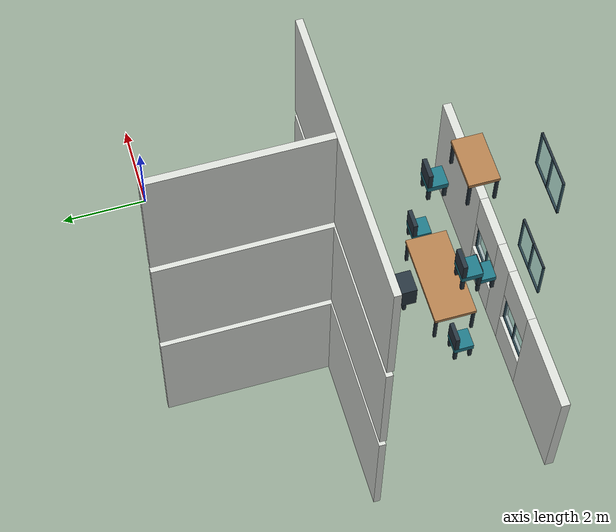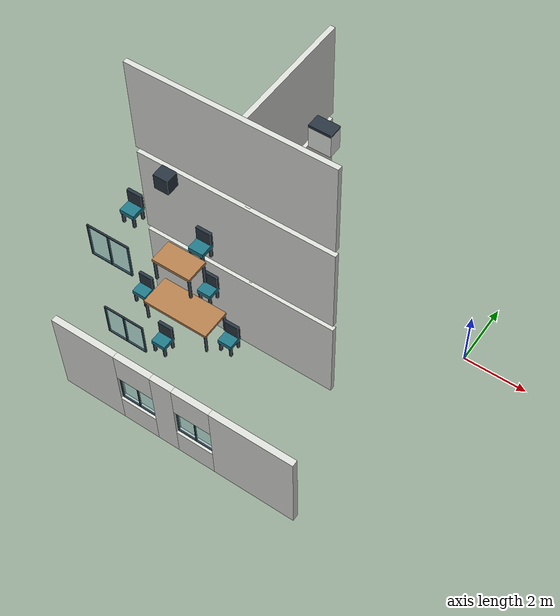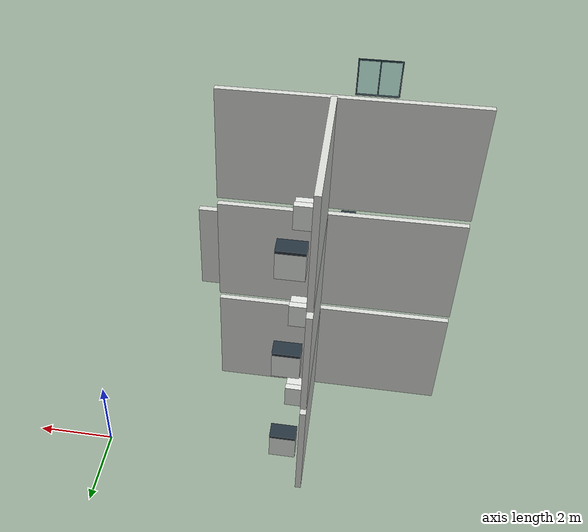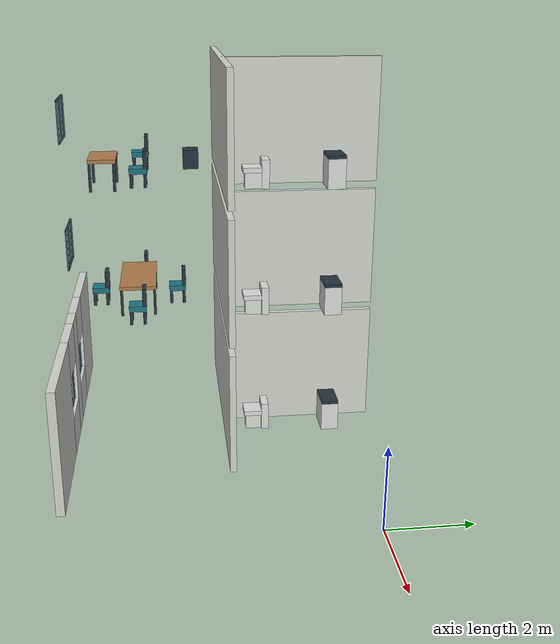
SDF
<sdf version="1.6">
 <world name="three_floor">
  <model name="f1_wall_004">
   <static>true</static>
   <pose>-5.1 -6.9 1.5 0 0 0</pose>
   <link name="f1_wall_004_link">
    <collision name="f1_wall_004_link_panel_0_collision">
     <pose>-2.85 0 0 0 0 0</pose>
     <geometry><box><size>2.1 0.2 3</size></box></geometry>
    </collision>
    <visual name="f1_wall_004_link_panel_0_visual">
     <pose>-2.85 0 0 0 0 0</pose>
     <geometry><box><size>2.1 0.2 3</size></box></geometry>
     <material><ambient>.84 .85 .83 1</ambient><diffuse>.84 .85 .83 1</diffuse></material>
    </visual>
    <collision name="f1_wall_004_link_sill_0_collision">
     <pose>-1.2 0 -1.025 0 0 0</pose>
     <geometry><box><size>1.2 0.2 0.95</size></box></geometry>
    </collision>
    <visual name="f1_wall_004_link_sill_0_visual">
     <pose>-1.2 0 -1.025 0 0 0</pose>
     <geometry><box><size>1.2 0.2 0.95</size></box></geometry>
     <material><ambient>.84 .85 .83 1</ambient><diffuse>.84 .85 .83 1</diffuse></material>
    </visual>
    <collision name="f1_wall_004_link_header_0_collision">
     <pose>-1.2 0 1 0 0 0</pose>
     <geometry><box><size>1.2 0.2 1</size></box></geometry>
    </collision>
    <visual name="f1_wall_004_link_header_0_visual">
     <pose>-1.2 0 1 0 0 0</pose>
     <geometry><box><size>1.2 0.2 1</size></box></geometry>
     <material><ambient>.84 .85 .83 1</ambient><diffuse>.84 .85 .83 1</diffuse></material>
    </visual>
    <collision name="f1_wall_004_link_panel_1_collision">
     <pose>-0.25 0 0 0 0 0</pose>
     <geometry><box><size>0.7 0.2 3</size></box></geometry>
    </collision>
    <visual name="f1_wall_004_link_panel_1_visual">
     <pose>-0.25 0 0 0 0 0</pose>
     <geometry><box><size>0.7 0.2 3</size></box></geometry>
     <material><ambient>.84 .85 .83 1</ambient><diffuse>.84 .85 .83 1</diffuse></material>
    </visual>
    <collision name="f1_wall_004_link_sill_1_collision">
     <pose>0.7 0 -1.025 0 0 0</pose>
     <geometry><box><size>1.2 0.2 0.95</size></box></geometry>
    </collision>
    <visual name="f1_wall_004_link_sill_1_visual">
     <pose>0.7 0 -1.025 0 0 0</pose>
     <geometry><box><size>1.2 0.2 0.95</size></box></geometry>
     <material><ambient>.84 .85 .83 1</ambient><diffuse>.84 .85 .83 1</diffuse></material>
    </visual>
    <collision name="f1_wall_004_link_header_1_collision">
     <pose>0.7 0 1 0 0 0</pose>
     <geometry><box><size>1.2 0.2 1</size></box></geometry>
    </collision>
    <visual name="f1_wall_004_link_header_1_visual">
     <pose>0.7 0 1 0 0 0</pose>
     <geometry><box><size>1.2 0.2 1</size></box></geometry>
     <material><ambient>.84 .85 .83 1</ambient><diffuse>.84 .85 .83 1</diffuse></material>
    </visual>
    <collision name="f1_wall_004_link_last_panel_collision">
     <pose>2.6 0 0 0 0 0</pose>
     <geometry><box><size>2.6 0.2 3</size></box></geometry>
    </collision>
    <visual name="f1_wall_004_link_last_panel_visual">
     <pose>2.6 0 0 0 0 0</pose>
     <geometry><box><size>2.6 0.2 3</size></box></geometry>
     <material><ambient>.84 .85 .83 1</ambient><diffuse>.84 .85 .83 1</diffuse></material>
    </visual>
   </link>
  </model>
  <model name="f1_wall_018">
   <static>true</static>
   <pose>-5.7 -3 1.5 0 0 0</pose>
   <link name="f1_wall_018_link">
    <collision name="f1_wall_018_collision"><geometry><box><size>6.2 0.15 3</size></box></geometry></collision>
    <visual name="f1_wall_018_visual">
     <geometry><box><size>6.2 0.15 3</size></box></geometry>
     <material><ambient>.84 .85 .83 1</ambient><diffuse>.84 .85 .83 1</diffuse></material>
    </visual>
   </link>
  </model>
  <model name="f1_wall_020">
   <static>true</static>
   <pose>-5.3 -1.1 1.5 0 0 0</pose>
   <link name="f1_wall_020_link">
    <collision name="f1_wall_020_collision"><geometry><box><size>0.15 3.8 3</size></box></geometry></collision>
    <visual name="f1_wall_020_visual">
     <geometry><box><size>0.15 3.8 3</size></box></geometry>
     <material><ambient>.84 .85 .83 1</ambient><diffuse>.84 .85 .83 1</diffuse></material>
    </visual>
   </link>
  </model>
  <model name="f2_wall_018">
   <static>true</static>
   <pose>-5.7 -3 4.7 0 0 0</pose>
   <link name="f2_wall_018_link">
    <collision name="f2_wall_018_collision"><geometry><box><size>6.2 0.15 3</size></box></geometry></collision>
    <visual name="f2_wall_018_visual">
     <geometry><box><size>6.2 0.15 3</size></box></geometry>
     <material><ambient>.84 .85 .83 1</ambient><diffuse>.84 .85 .83 1</diffuse></material>
    </visual>
   </link>
  </model>
  <model name="f2_wall_020">
   <static>true</static>
   <pose>-5.3 -1.1 4.7 0 0 0</pose>
   <link name="f2_wall_020_link">
    <collision name="f2_wall_020_collision"><geometry><box><size>0.15 3.8 3</size></box></geometry></collision>
    <visual name="f2_wall_020_visual">
     <geometry><box><size>0.15 3.8 3</size></box></geometry>
     <material><ambient>.84 .85 .83 1</ambient><diffuse>.84 .85 .83 1</diffuse></material>
    </visual>
   </link>
  </model>
  <model name="f3_wall_018">
   <static>true</static>
   <pose>-5.7 -3 7.9 0 0 0</pose>
   <link name="f3_wall_018_link">
    <collision name="f3_wall_018_collision"><geometry><box><size>6.2 0.15 3</size></box></geometry></collision>
    <visual name="f3_wall_018_visual">
     <geometry><box><size>6.2 0.15 3</size></box></geometry>
     <material><ambient>.84 .85 .83 1</ambient><diffuse>.84 .85 .83 1</diffuse></material>
    </visual>
   </link>
  </model>
  <model name="f3_wall_020">
   <static>true</static>
   <pose>-5.3 -1.1 7.9 0 0 0</pose>
   <link name="f3_wall_020_link">
    <collision name="f3_wall_020_collision"><geometry><box><size>0.15 3.8 3</size></box></geometry></collision>
    <visual name="f3_wall_020_visual">
     <geometry><box><size>0.15 3.8 3</size></box></geometry>
     <material><ambient>.84 .85 .83 1</ambient><diffuse>.84 .85 .83 1</diffuse></material>
    </visual>
   </link>
  </model>
  <model name="f1_s2_window_08">
   <static>true</static>
   <pose>-6.3 -6.9 1.475 0 0 0</pose>
   <link name="f1_s2_window_08_link">
    <collision name="f1_s2_window_08_link_glass_collision">
     <geometry><box><size>1.2 0.045 1.05</size></box></geometry>
    </collision>
    <visual name="f1_s2_window_08_link_glass_visual">
     <geometry><box><size>1.2 0.045 1.05</size></box></geometry>
     <material><ambient>0.44 0.76 0.83 1</ambient><diffuse>0.44 0.76 0.83 1</diffuse></material>
     <transparency>0.65</transparency>
    </visual>
    <collision name="f1_s2_window_08_link_mullion_-0.58_collision">
     <pose>-0.58 0 0 0 0 0</pose>
     <geometry><box><size>0.035 0.045 1.05</size></box></geometry>
    </collision>
    <visual name="f1_s2_window_08_link_mullion_-0.58_visual">
     <pose>-0.58 0 0 0 0 0</pose>
     <geometry><box><size>0.035 0.045 1.05</size></box></geometry>
     <material><ambient>0.15 0.2 0.24 1</ambient><diffuse>0.15 0.2 0.24 1</diffuse></material>
    </visual>
    <collision name="f1_s2_window_08_link_mullion_0.58_collision">
     <pose>0.58 0 0 0 0 0</pose>
     <geometry><box><size>0.035 0.045 1.05</size></box></geometry>
    </collision>
    <visual name="f1_s2_window_08_link_mullion_0.58_visual">
     <pose>0.58 0 0 0 0 0</pose>
     <geometry><box><size>0.035 0.045 1.05</size></box></geometry>
     <material><ambient>0.15 0.2 0.24 1</ambient><diffuse>0.15 0.2 0.24 1</diffuse></material>
    </visual>
    <collision name="f1_s2_window_08_link_mullion_0_collision">
     <geometry><box><size>0.035 0.045 1.05</size></box></geometry>
    </collision>
    <visual name="f1_s2_window_08_link_mullion_0_visual">
     <geometry><box><size>0.035 0.045 1.05</size></box></geometry>
     <material><ambient>0.15 0.2 0.24 1</ambient><diffuse>0.15 0.2 0.24 1</diffuse></material>
    </visual>
    <collision name="f1_s2_window_08_link_frame_-0.51_collision">
     <pose>0 0 -0.51 0 0 0</pose>
     <geometry><box><size>1.2 0.045 0.03</size></box></geometry>
    </collision>
    <visual name="f1_s2_window_08_link_frame_-0.51_visual">
     <pose>0 0 -0.51 0 0 0</pose>
     <geometry><box><size>1.2 0.045 0.03</size></box></geometry>
     <material><ambient>0.15 0.2 0.24 1</ambient><diffuse>0.15 0.2 0.24 1</diffuse></material>
    </visual>
    <collision name="f1_s2_window_08_link_frame_0.51_collision">
     <pose>0 0 0.51 0 0 0</pose>
     <geometry><box><size>1.2 0.045 0.03</size></box></geometry>
    </collision>
    <visual name="f1_s2_window_08_link_frame_0.51_visual">
     <pose>0 0 0.51 0 0 0</pose>
     <geometry><box><size>1.2 0.045 0.03</size></box></geometry>
     <material><ambient>0.15 0.2 0.24 1</ambient><diffuse>0.15 0.2 0.24 1</diffuse></material>
    </visual>
   </link>
  </model>
  <model name="f1_s2_window_09">
   <static>true</static>
   <pose>-4.4 -6.9 1.475 0 0 0</pose>
   <link name="f1_s2_window_09_link">
    <collision name="f1_s2_window_09_link_glass_collision">
     <geometry><box><size>1.2 0.045 1.05</size></box></geometry>
    </collision>
    <visual name="f1_s2_window_09_link_glass_visual">
     <geometry><box><size>1.2 0.045 1.05</size></box></geometry>
     <material><ambient>0.44 0.76 0.83 1</ambient><diffuse>0.44 0.76 0.83 1</diffuse></material>
     <transparency>0.65</transparency>
    </visual>
    <collision name="f1_s2_window_09_link_mullion_-0.58_collision">
     <pose>-0.58 0 0 0 0 0</pose>
     <geometry><box><size>0.035 0.045 1.05</size></box></geometry>
    </collision>
    <visual name="f1_s2_window_09_link_mullion_-0.58_visual">
     <pose>-0.58 0 0 0 0 0</pose>
     <geometry><box><size>0.035 0.045 1.05</size></box></geometry>
     <material><ambient>0.15 0.2 0.24 1</ambient><diffuse>0.15 0.2 0.24 1</diffuse></material>
    </visual>
    <collision name="f1_s2_window_09_link_mullion_0.58_collision">
     <pose>0.58 0 0 0 0 0</pose>
     <geometry><box><size>0.035 0.045 1.05</size></box></geometry>
    </collision>
    <visual name="f1_s2_window_09_link_mullion_0.58_visual">
     <pose>0.58 0 0 0 0 0</pose>
     <geometry><box><size>0.035 0.045 1.05</size></box></geometry>
     <material><ambient>0.15 0.2 0.24 1</ambient><diffuse>0.15 0.2 0.24 1</diffuse></material>
    </visual>
    <collision name="f1_s2_window_09_link_mullion_0_collision">
     <geometry><box><size>0.035 0.045 1.05</size></box></geometry>
    </collision>
    <visual name="f1_s2_window_09_link_mullion_0_visual">
     <geometry><box><size>0.035 0.045 1.05</size></box></geometry>
     <material><ambient>0.15 0.2 0.24 1</ambient><diffuse>0.15 0.2 0.24 1</diffuse></material>
    </visual>
    <collision name="f1_s2_window_09_link_frame_-0.51_collision">
     <pose>0 0 -0.51 0 0 0</pose>
     <geometry><box><size>1.2 0.045 0.03</size></box></geometry>
    </collision>
    <visual name="f1_s2_window_09_link_frame_-0.51_visual">
     <pose>0 0 -0.51 0 0 0</pose>
     <geometry><box><size>1.2 0.045 0.03</size></box></geometry>
     <material><ambient>0.15 0.2 0.24 1</ambient><diffuse>0.15 0.2 0.24 1</diffuse></material>
    </visual>
    <collision name="f1_s2_window_09_link_frame_0.51_collision">
     <pose>0 0 0.51 0 0 0</pose>
     <geometry><box><size>1.2 0.045 0.03</size></box></geometry>
    </collision>
    <visual name="f1_s2_window_09_link_frame_0.51_visual">
     <pose>0 0 0.51 0 0 0</pose>
     <geometry><box><size>1.2 0.045 0.03</size></box></geometry>
     <material><ambient>0.15 0.2 0.24 1</ambient><diffuse>0.15 0.2 0.24 1</diffuse></material>
    </visual>
   </link>
  </model>
  <model name="f2_s2_window_19">
   <static>true</static>
   <pose>-6.3 -6.9 4.675 0 0 0</pose>
   <link name="f2_s2_window_19_link">
    <collision name="f2_s2_window_19_link_glass_collision">
     <geometry><box><size>1.2 0.045 1.05</size></box></geometry>
    </collision>
    <visual name="f2_s2_window_19_link_glass_visual">
     <geometry><box><size>1.2 0.045 1.05</size></box></geometry>
     <material><ambient>0.44 0.76 0.83 1</ambient><diffuse>0.44 0.76 0.83 1</diffuse></material>
     <transparency>0.65</transparency>
    </visual>
    <collision name="f2_s2_window_19_link_mullion_-0.58_collision">
     <pose>-0.58 0 0 0 0 0</pose>
     <geometry><box><size>0.035 0.045 1.05</size></box></geometry>
    </collision>
    <visual name="f2_s2_window_19_link_mullion_-0.58_visual">
     <pose>-0.58 0 0 0 0 0</pose>
     <geometry><box><size>0.035 0.045 1.05</size></box></geometry>
     <material><ambient>0.15 0.2 0.24 1</ambient><diffuse>0.15 0.2 0.24 1</diffuse></material>
    </visual>
    <collision name="f2_s2_window_19_link_mullion_0.58_collision">
     <pose>0.58 0 0 0 0 0</pose>
     <geometry><box><size>0.035 0.045 1.05</size></box></geometry>
    </collision>
    <visual name="f2_s2_window_19_link_mullion_0.58_visual">
     <pose>0.58 0 0 0 0 0</pose>
     <geometry><box><size>0.035 0.045 1.05</size></box></geometry>
     <material><ambient>0.15 0.2 0.24 1</ambient><diffuse>0.15 0.2 0.24 1</diffuse></material>
    </visual>
    <collision name="f2_s2_window_19_link_mullion_0_collision">
     <geometry><box><size>0.035 0.045 1.05</size></box></geometry>
    </collision>
    <visual name="f2_s2_window_19_link_mullion_0_visual">
     <geometry><box><size>0.035 0.045 1.05</size></box></geometry>
     <material><ambient>0.15 0.2 0.24 1</ambient><diffuse>0.15 0.2 0.24 1</diffuse></material>
    </visual>
    <collision name="f2_s2_window_19_link_frame_-0.51_collision">
     <pose>0 0 -0.51 0 0 0</pose>
     <geometry><box><size>1.2 0.045 0.03</size></box></geometry>
    </collision>
    <visual name="f2_s2_window_19_link_frame_-0.51_visual">
     <pose>0 0 -0.51 0 0 0</pose>
     <geometry><box><size>1.2 0.045 0.03</size></box></geometry>
     <material><ambient>0.15 0.2 0.24 1</ambient><diffuse>0.15 0.2 0.24 1</diffuse></material>
    </visual>
    <collision name="f2_s2_window_19_link_frame_0.51_collision">
     <pose>0 0 0.51 0 0 0</pose>
     <geometry><box><size>1.2 0.045 0.03</size></box></geometry>
    </collision>
    <visual name="f2_s2_window_19_link_frame_0.51_visual">
     <pose>0 0 0.51 0 0 0</pose>
     <geometry><box><size>1.2 0.045 0.03</size></box></geometry>
     <material><ambient>0.15 0.2 0.24 1</ambient><diffuse>0.15 0.2 0.24 1</diffuse></material>
    </visual>
   </link>
  </model>
  <model name="f3_s2_window_31">
   <static>true</static>
   <pose>-6.3 -6.9 7.875 0 0 0</pose>
   <link name="f3_s2_window_31_link">
    <collision name="f3_s2_window_31_link_glass_collision">
     <geometry><box><size>1.2 0.045 1.05</size></box></geometry>
    </collision>
    <visual name="f3_s2_window_31_link_glass_visual">
     <geometry><box><size>1.2 0.045 1.05</size></box></geometry>
     <material><ambient>0.44 0.76 0.83 1</ambient><diffuse>0.44 0.76 0.83 1</diffuse></material>
     <transparency>0.65</transparency>
    </visual>
    <collision name="f3_s2_window_31_link_mullion_-0.58_collision">
     <pose>-0.58 0 0 0 0 0</pose>
     <geometry><box><size>0.035 0.045 1.05</size></box></geometry>
    </collision>
    <visual name="f3_s2_window_31_link_mullion_-0.58_visual">
     <pose>-0.58 0 0 0 0 0</pose>
     <geometry><box><size>0.035 0.045 1.05</size></box></geometry>
     <material><ambient>0.15 0.2 0.24 1</ambient><diffuse>0.15 0.2 0.24 1</diffuse></material>
    </visual>
    <collision name="f3_s2_window_31_link_mullion_0.58_collision">
     <pose>0.58 0 0 0 0 0</pose>
     <geometry><box><size>0.035 0.045 1.05</size></box></geometry>
    </collision>
    <visual name="f3_s2_window_31_link_mullion_0.58_visual">
     <pose>0.58 0 0 0 0 0</pose>
     <geometry><box><size>0.035 0.045 1.05</size></box></geometry>
     <material><ambient>0.15 0.2 0.24 1</ambient><diffuse>0.15 0.2 0.24 1</diffuse></material>
    </visual>
    <collision name="f3_s2_window_31_link_mullion_0_collision">
     <geometry><box><size>0.035 0.045 1.05</size></box></geometry>
    </collision>
    <visual name="f3_s2_window_31_link_mullion_0_visual">
     <geometry><box><size>0.035 0.045 1.05</size></box></geometry>
     <material><ambient>0.15 0.2 0.24 1</ambient><diffuse>0.15 0.2 0.24 1</diffuse></material>
    </visual>
    <collision name="f3_s2_window_31_link_frame_-0.51_collision">
     <pose>0 0 -0.51 0 0 0</pose>
     <geometry><box><size>1.2 0.045 0.03</size></box></geometry>
    </collision>
    <visual name="f3_s2_window_31_link_frame_-0.51_visual">
     <pose>0 0 -0.51 0 0 0</pose>
     <geometry><box><size>1.2 0.045 0.03</size></box></geometry>
     <material><ambient>0.15 0.2 0.24 1</ambient><diffuse>0.15 0.2 0.24 1</diffuse></material>
    </visual>
    <collision name="f3_s2_window_31_link_frame_0.51_collision">
     <pose>0 0 0.51 0 0 0</pose>
     <geometry><box><size>1.2 0.045 0.03</size></box></geometry>
    </collision>
    <visual name="f3_s2_window_31_link_frame_0.51_visual">
     <pose>0 0 0.51 0 0 0</pose>
     <geometry><box><size>1.2 0.045 0.03</size></box></geometry>
     <material><ambient>0.15 0.2 0.24 1</ambient><diffuse>0.15 0.2 0.24 1</diffuse></material>
    </visual>
   </link>
  </model>
  <model name="f1_s2_furniture_08_toilet">
   <static>true</static>
   <pose>-4.85 -2.25 0 0 0 0</pose>
   <link name="f1_s2_furniture_08_toilet_link">
    <collision name="f1_s2_furniture_08_toilet_link_base_collision">
     <pose>0 0 0.22 0 0 0</pose>
     <geometry><box><size>0.375 0.52 0.44</size></box></geometry>
    </collision>
    <visual name="f1_s2_furniture_08_toilet_link_base_visual">
     <pose>0 0 0.22 0 0 0</pose>
     <geometry><box><size>0.375 0.52 0.44</size></box></geometry>
     <material><ambient>0.88 0.89 0.88 1</ambient><diffuse>0.88 0.89 0.88 1</diffuse></material>
    </visual>
    <collision name="f1_s2_furniture_08_toilet_link_bowl_collision">
     <pose>0 -0.08 0.45 0 0 0</pose>
     <geometry><box><size>0.5 0.455 0.12</size></box></geometry>
    </collision>
    <visual name="f1_s2_furniture_08_toilet_link_bowl_visual">
     <pose>0 -0.08 0.45 0 0 0</pose>
     <geometry><box><size>0.5 0.455 0.12</size></box></geometry>
     <material><ambient>0.88 0.89 0.88 1</ambient><diffuse>0.88 0.89 0.88 1</diffuse></material>
    </visual>
    <collision name="f1_s2_furniture_08_toilet_link_cistern_collision">
     <pose>0 0.2275 0.35 0 0 0</pose>
     <geometry><box><size>0.5 0.18 0.7</size></box></geometry>
    </collision>
    <visual name="f1_s2_furniture_08_toilet_link_cistern_visual">
     <pose>0 0.2275 0.35 0 0 0</pose>
     <geometry><box><size>0.5 0.18 0.7</size></box></geometry>
     <material><ambient>0.88 0.89 0.88 1</ambient><diffuse>0.88 0.89 0.88 1</diffuse></material>
    </visual>
   </link>
  </model>
  <model name="f1_s2_furniture_09_basin">
   <static>true</static>
   <pose>-4.75 -0.35 0 0 0 0</pose>
   <link name="f1_s2_furniture_09_basin_link">
    <collision name="f1_s2_furniture_09_basin_link_cabinet_collision">
     <pose>0 0 0.36 0 0 0</pose>
     <geometry><box><size>0.7 0.43 0.72</size></box></geometry>
    </collision>
    <visual name="f1_s2_furniture_09_basin_link_cabinet_visual">
     <pose>0 0 0.36 0 0 0</pose>
     <geometry><box><size>0.7 0.43 0.72</size></box></geometry>
     <material><ambient>0.88 0.89 0.88 1</ambient><diffuse>0.88 0.89 0.88 1</diffuse></material>
    </visual>
    <collision name="f1_s2_furniture_09_basin_link_sink_collision">
     <pose>0 0 0.76 0 0 0</pose>
     <geometry><box><size>0.7 0.43 0.08</size></box></geometry>
    </collision>
    <visual name="f1_s2_furniture_09_basin_link_sink_visual">
     <pose>0 0 0.76 0 0 0</pose>
     <geometry><box><size>0.7 0.43 0.08</size></box></geometry>
     <material><ambient>0.15 0.2 0.24 1</ambient><diffuse>0.15 0.2 0.24 1</diffuse></material>
    </visual>
   </link>
  </model>
  <model name="f2_s2_furniture_27_table">
   <static>true</static>
   <pose>-5.85 -5.15 3.2 0 0 0</pose>
   <link name="f2_s2_furniture_27_table_link">
    <collision name="f2_s2_furniture_27_table_link_top_collision">
     <pose>0 0 0.715 0 0 0</pose>
     <geometry><box><size>2 0.9 0.09</size></box></geometry>
    </collision>
    <visual name="f2_s2_furniture_27_table_link_top_visual">
     <pose>0 0 0.715 0 0 0</pose>
     <geometry><box><size>2 0.9 0.09</size></box></geometry>
     <material><ambient>0.69 0.49 0.3 1</ambient><diffuse>0.69 0.49 0.3 1</diffuse></material>
    </visual>
    <collision name="f2_s2_furniture_27_table_link_leg_-0.955_-0.405_collision">
     <pose>-0.955 -0.405 0.335 0 0 0</pose>
     <geometry><box><size>0.06 0.06 0.67</size></box></geometry>
    </collision>
    <visual name="f2_s2_furniture_27_table_link_leg_-0.955_-0.405_visual">
     <pose>-0.955 -0.405 0.335 0 0 0</pose>
     <geometry><box><size>0.06 0.06 0.67</size></box></geometry>
     <material><ambient>0.15 0.2 0.24 1</ambient><diffuse>0.15 0.2 0.24 1</diffuse></material>
    </visual>
    <collision name="f2_s2_furniture_27_table_link_leg_-0.955_0.405_collision">
     <pose>-0.955 0.405 0.335 0 0 0</pose>
     <geometry><box><size>0.06 0.06 0.67</size></box></geometry>
    </collision>
    <visual name="f2_s2_furniture_27_table_link_leg_-0.955_0.405_visual">
     <pose>-0.955 0.405 0.335 0 0 0</pose>
     <geometry><box><size>0.06 0.06 0.67</size></box></geometry>
     <material><ambient>0.15 0.2 0.24 1</ambient><diffuse>0.15 0.2 0.24 1</diffuse></material>
    </visual>
    <collision name="f2_s2_furniture_27_table_link_leg_0.955_-0.405_collision">
     <pose>0.955 -0.405 0.335 0 0 0</pose>
     <geometry><box><size>0.06 0.06 0.67</size></box></geometry>
    </collision>
    <visual name="f2_s2_furniture_27_table_link_leg_0.955_-0.405_visual">
     <pose>0.955 -0.405 0.335 0 0 0</pose>
     <geometry><box><size>0.06 0.06 0.67</size></box></geometry>
     <material><ambient>0.15 0.2 0.24 1</ambient><diffuse>0.15 0.2 0.24 1</diffuse></material>
    </visual>
    <collision name="f2_s2_furniture_27_table_link_leg_0.955_0.405_collision">
     <pose>0.955 0.405 0.335 0 0 0</pose>
     <geometry><box><size>0.06 0.06 0.67</size></box></geometry>
    </collision>
    <visual name="f2_s2_furniture_27_table_link_leg_0.955_0.405_visual">
     <pose>0.955 0.405 0.335 0 0 0</pose>
     <geometry><box><size>0.06 0.06 0.67</size></box></geometry>
     <material><ambient>0.15 0.2 0.24 1</ambient><diffuse>0.15 0.2 0.24 1</diffuse></material>
    </visual>
   </link>
  </model>
  <model name="f2_s2_furniture_28_seat">
   <static>true</static>
   <pose>-7.25 -5.15 3.2 0 0 0</pose>
   <link name="f2_s2_furniture_28_seat_link">
    <collision name="f2_s2_furniture_28_seat_link_seat_collision">
     <pose>0 0 0.4 0 0 0</pose>
     <geometry><box><size>0.42 0.42 0.14</size></box></geometry>
    </collision>
    <visual name="f2_s2_furniture_28_seat_link_seat_visual">
     <pose>0 0 0.4 0 0 0</pose>
     <geometry><box><size>0.42 0.42 0.14</size></box></geometry>
     <material><ambient>0.12 0.46 0.52 1</ambient><diffuse>0.12 0.46 0.52 1</diffuse></material>
    </visual>
    <collision name="f2_s2_furniture_28_seat_link_back_collision">
     <pose>0 0.165 0.68 0 0 0</pose>
     <geometry><box><size>0.42 0.09 0.42</size></box></geometry>
    </collision>
    <visual name="f2_s2_furniture_28_seat_link_back_visual">
     <pose>0 0.165 0.68 0 0 0</pose>
     <geometry><box><size>0.42 0.09 0.42</size></box></geometry>
     <material><ambient>0.15 0.2 0.24 1</ambient><diffuse>0.15 0.2 0.24 1</diffuse></material>
    </visual>
    <collision name="f2_s2_furniture_28_seat_link_leg_-0.15999999999999998_-0.15999999999999998_collision">
     <pose>-0.16 -0.16 0.165 0 0 0</pose>
     <geometry><box><size>0.07 0.07 0.33</size></box></geometry>
    </collision>
    <visual name="f2_s2_furniture_28_seat_link_leg_-0.15999999999999998_-0.15999999999999998_visual">
     <pose>-0.16 -0.16 0.165 0 0 0</pose>
     <geometry><box><size>0.07 0.07 0.33</size></box></geometry>
     <material><ambient>0.15 0.2 0.24 1</ambient><diffuse>0.15 0.2 0.24 1</diffuse></material>
    </visual>
    <collision name="f2_s2_furniture_28_seat_link_leg_-0.15999999999999998_0.15999999999999998_collision">
     <pose>-0.16 0.16 0.165 0 0 0</pose>
     <geometry><box><size>0.07 0.07 0.33</size></box></geometry>
    </collision>
    <visual name="f2_s2_furniture_28_seat_link_leg_-0.15999999999999998_0.15999999999999998_visual">
     <pose>-0.16 0.16 0.165 0 0 0</pose>
     <geometry><box><size>0.07 0.07 0.33</size></box></geometry>
     <material><ambient>0.15 0.2 0.24 1</ambient><diffuse>0.15 0.2 0.24 1</diffuse></material>
    </visual>
    <collision name="f2_s2_furniture_28_seat_link_leg_0.15999999999999998_-0.15999999999999998_collision">
     <pose>0.16 -0.16 0.165 0 0 0</pose>
     <geometry><box><size>0.07 0.07 0.33</size></box></geometry>
    </collision>
    <visual name="f2_s2_furniture_28_seat_link_leg_0.15999999999999998_-0.15999999999999998_visual">
     <pose>0.16 -0.16 0.165 0 0 0</pose>
     <geometry><box><size>0.07 0.07 0.33</size></box></geometry>
     <material><ambient>0.15 0.2 0.24 1</ambient><diffuse>0.15 0.2 0.24 1</diffuse></material>
    </visual>
    <collision name="f2_s2_furniture_28_seat_link_leg_0.15999999999999998_0.15999999999999998_collision">
     <pose>0.16 0.16 0.165 0 0 0</pose>
     <geometry><box><size>0.07 0.07 0.33</size></box></geometry>
    </collision>
    <visual name="f2_s2_furniture_28_seat_link_leg_0.15999999999999998_0.15999999999999998_visual">
     <pose>0.16 0.16 0.165 0 0 0</pose>
     <geometry><box><size>0.07 0.07 0.33</size></box></geometry>
     <material><ambient>0.15 0.2 0.24 1</ambient><diffuse>0.15 0.2 0.24 1</diffuse></material>
    </visual>
   </link>
  </model>
  <model name="f2_s2_furniture_29_seat">
   <static>true</static>
   <pose>-4.45 -5.15 3.2 0 0 0</pose>
   <link name="f2_s2_furniture_29_seat_link">
    <collision name="f2_s2_furniture_29_seat_link_seat_collision">
     <pose>0 0 0.4 0 0 0</pose>
     <geometry><box><size>0.42 0.42 0.14</size></box></geometry>
    </collision>
    <visual name="f2_s2_furniture_29_seat_link_seat_visual">
     <pose>0 0 0.4 0 0 0</pose>
     <geometry><box><size>0.42 0.42 0.14</size></box></geometry>
     <material><ambient>0.12 0.46 0.52 1</ambient><diffuse>0.12 0.46 0.52 1</diffuse></material>
    </visual>
    <collision name="f2_s2_furniture_29_seat_link_back_collision">
     <pose>0 0.165 0.68 0 0 0</pose>
     <geometry><box><size>0.42 0.09 0.42</size></box></geometry>
    </collision>
    <visual name="f2_s2_furniture_29_seat_link_back_visual">
     <pose>0 0.165 0.68 0 0 0</pose>
     <geometry><box><size>0.42 0.09 0.42</size></box></geometry>
     <material><ambient>0.15 0.2 0.24 1</ambient><diffuse>0.15 0.2 0.24 1</diffuse></material>
    </visual>
    <collision name="f2_s2_furniture_29_seat_link_leg_-0.15999999999999998_-0.15999999999999998_collision">
     <pose>-0.16 -0.16 0.165 0 0 0</pose>
     <geometry><box><size>0.07 0.07 0.33</size></box></geometry>
    </collision>
    <visual name="f2_s2_furniture_29_seat_link_leg_-0.15999999999999998_-0.15999999999999998_visual">
     <pose>-0.16 -0.16 0.165 0 0 0</pose>
     <geometry><box><size>0.07 0.07 0.33</size></box></geometry>
     <material><ambient>0.15 0.2 0.24 1</ambient><diffuse>0.15 0.2 0.24 1</diffuse></material>
    </visual>
    <collision name="f2_s2_furniture_29_seat_link_leg_-0.15999999999999998_0.15999999999999998_collision">
     <pose>-0.16 0.16 0.165 0 0 0</pose>
     <geometry><box><size>0.07 0.07 0.33</size></box></geometry>
    </collision>
    <visual name="f2_s2_furniture_29_seat_link_leg_-0.15999999999999998_0.15999999999999998_visual">
     <pose>-0.16 0.16 0.165 0 0 0</pose>
     <geometry><box><size>0.07 0.07 0.33</size></box></geometry>
     <material><ambient>0.15 0.2 0.24 1</ambient><diffuse>0.15 0.2 0.24 1</diffuse></material>
    </visual>
    <collision name="f2_s2_furniture_29_seat_link_leg_0.15999999999999998_-0.15999999999999998_collision">
     <pose>0.16 -0.16 0.165 0 0 0</pose>
     <geometry><box><size>0.07 0.07 0.33</size></box></geometry>
    </collision>
    <visual name="f2_s2_furniture_29_seat_link_leg_0.15999999999999998_-0.15999999999999998_visual">
     <pose>0.16 -0.16 0.165 0 0 0</pose>
     <geometry><box><size>0.07 0.07 0.33</size></box></geometry>
     <material><ambient>0.15 0.2 0.24 1</ambient><diffuse>0.15 0.2 0.24 1</diffuse></material>
    </visual>
    <collision name="f2_s2_furniture_29_seat_link_leg_0.15999999999999998_0.15999999999999998_collision">
     <pose>0.16 0.16 0.165 0 0 0</pose>
     <geometry><box><size>0.07 0.07 0.33</size></box></geometry>
    </collision>
    <visual name="f2_s2_furniture_29_seat_link_leg_0.15999999999999998_0.15999999999999998_visual">
     <pose>0.16 0.16 0.165 0 0 0</pose>
     <geometry><box><size>0.07 0.07 0.33</size></box></geometry>
     <material><ambient>0.15 0.2 0.24 1</ambient><diffuse>0.15 0.2 0.24 1</diffuse></material>
    </visual>
   </link>
  </model>
  <model name="f2_s2_furniture_30_seat">
   <static>true</static>
   <pose>-5.85 -6.12 3.2 0 0 0</pose>
   <link name="f2_s2_furniture_30_seat_link">
    <collision name="f2_s2_furniture_30_seat_link_seat_collision">
     <pose>0 0 0.4 0 0 0</pose>
     <geometry><box><size>0.42 0.42 0.14</size></box></geometry>
    </collision>
    <visual name="f2_s2_furniture_30_seat_link_seat_visual">
     <pose>0 0 0.4 0 0 0</pose>
     <geometry><box><size>0.42 0.42 0.14</size></box></geometry>
     <material><ambient>0.12 0.46 0.52 1</ambient><diffuse>0.12 0.46 0.52 1</diffuse></material>
    </visual>
    <collision name="f2_s2_furniture_30_seat_link_back_collision">
     <pose>0 0.165 0.68 0 0 0</pose>
     <geometry><box><size>0.42 0.09 0.42</size></box></geometry>
    </collision>
    <visual name="f2_s2_furniture_30_seat_link_back_visual">
     <pose>0 0.165 0.68 0 0 0</pose>
     <geometry><box><size>0.42 0.09 0.42</size></box></geometry>
     <material><ambient>0.15 0.2 0.24 1</ambient><diffuse>0.15 0.2 0.24 1</diffuse></material>
    </visual>
    <collision name="f2_s2_furniture_30_seat_link_leg_-0.15999999999999998_-0.15999999999999998_collision">
     <pose>-0.16 -0.16 0.165 0 0 0</pose>
     <geometry><box><size>0.07 0.07 0.33</size></box></geometry>
    </collision>
    <visual name="f2_s2_furniture_30_seat_link_leg_-0.15999999999999998_-0.15999999999999998_visual">
     <pose>-0.16 -0.16 0.165 0 0 0</pose>
     <geometry><box><size>0.07 0.07 0.33</size></box></geometry>
     <material><ambient>0.15 0.2 0.24 1</ambient><diffuse>0.15 0.2 0.24 1</diffuse></material>
    </visual>
    <collision name="f2_s2_furniture_30_seat_link_leg_-0.15999999999999998_0.15999999999999998_collision">
     <pose>-0.16 0.16 0.165 0 0 0</pose>
     <geometry><box><size>0.07 0.07 0.33</size></box></geometry>
    </collision>
    <visual name="f2_s2_furniture_30_seat_link_leg_-0.15999999999999998_0.15999999999999998_visual">
     <pose>-0.16 0.16 0.165 0 0 0</pose>
     <geometry><box><size>0.07 0.07 0.33</size></box></geometry>
     <material><ambient>0.15 0.2 0.24 1</ambient><diffuse>0.15 0.2 0.24 1</diffuse></material>
    </visual>
    <collision name="f2_s2_furniture_30_seat_link_leg_0.15999999999999998_-0.15999999999999998_collision">
     <pose>0.16 -0.16 0.165 0 0 0</pose>
     <geometry><box><size>0.07 0.07 0.33</size></box></geometry>
    </collision>
    <visual name="f2_s2_furniture_30_seat_link_leg_0.15999999999999998_-0.15999999999999998_visual">
     <pose>0.16 -0.16 0.165 0 0 0</pose>
     <geometry><box><size>0.07 0.07 0.33</size></box></geometry>
     <material><ambient>0.15 0.2 0.24 1</ambient><diffuse>0.15 0.2 0.24 1</diffuse></material>
    </visual>
    <collision name="f2_s2_furniture_30_seat_link_leg_0.15999999999999998_0.15999999999999998_collision">
     <pose>0.16 0.16 0.165 0 0 0</pose>
     <geometry><box><size>0.07 0.07 0.33</size></box></geometry>
    </collision>
    <visual name="f2_s2_furniture_30_seat_link_leg_0.15999999999999998_0.15999999999999998_visual">
     <pose>0.16 0.16 0.165 0 0 0</pose>
     <geometry><box><size>0.07 0.07 0.33</size></box></geometry>
     <material><ambient>0.15 0.2 0.24 1</ambient><diffuse>0.15 0.2 0.24 1</diffuse></material>
    </visual>
   </link>
  </model>
  <model name="f2_s2_furniture_31_seat">
   <static>true</static>
   <pose>-5.85 -4.17 3.2 0 0 0</pose>
   <link name="f2_s2_furniture_31_seat_link">
    <collision name="f2_s2_furniture_31_seat_link_seat_collision">
     <pose>0 0 0.4 0 0 0</pose>
     <geometry><box><size>0.42 0.42 0.14</size></box></geometry>
    </collision>
    <visual name="f2_s2_furniture_31_seat_link_seat_visual">
     <pose>0 0 0.4 0 0 0</pose>
     <geometry><box><size>0.42 0.42 0.14</size></box></geometry>
     <material><ambient>0.12 0.46 0.52 1</ambient><diffuse>0.12 0.46 0.52 1</diffuse></material>
    </visual>
    <collision name="f2_s2_furniture_31_seat_link_back_collision">
     <pose>0 0.165 0.68 0 0 0</pose>
     <geometry><box><size>0.42 0.09 0.42</size></box></geometry>
    </collision>
    <visual name="f2_s2_furniture_31_seat_link_back_visual">
     <pose>0 0.165 0.68 0 0 0</pose>
     <geometry><box><size>0.42 0.09 0.42</size></box></geometry>
     <material><ambient>0.15 0.2 0.24 1</ambient><diffuse>0.15 0.2 0.24 1</diffuse></material>
    </visual>
    <collision name="f2_s2_furniture_31_seat_link_leg_-0.15999999999999998_-0.15999999999999998_collision">
     <pose>-0.16 -0.16 0.165 0 0 0</pose>
     <geometry><box><size>0.07 0.07 0.33</size></box></geometry>
    </collision>
    <visual name="f2_s2_furniture_31_seat_link_leg_-0.15999999999999998_-0.15999999999999998_visual">
     <pose>-0.16 -0.16 0.165 0 0 0</pose>
     <geometry><box><size>0.07 0.07 0.33</size></box></geometry>
     <material><ambient>0.15 0.2 0.24 1</ambient><diffuse>0.15 0.2 0.24 1</diffuse></material>
    </visual>
    <collision name="f2_s2_furniture_31_seat_link_leg_-0.15999999999999998_0.15999999999999998_collision">
     <pose>-0.16 0.16 0.165 0 0 0</pose>
     <geometry><box><size>0.07 0.07 0.33</size></box></geometry>
    </collision>
    <visual name="f2_s2_furniture_31_seat_link_leg_-0.15999999999999998_0.15999999999999998_visual">
     <pose>-0.16 0.16 0.165 0 0 0</pose>
     <geometry><box><size>0.07 0.07 0.33</size></box></geometry>
     <material><ambient>0.15 0.2 0.24 1</ambient><diffuse>0.15 0.2 0.24 1</diffuse></material>
    </visual>
    <collision name="f2_s2_furniture_31_seat_link_leg_0.15999999999999998_-0.15999999999999998_collision">
     <pose>0.16 -0.16 0.165 0 0 0</pose>
     <geometry><box><size>0.07 0.07 0.33</size></box></geometry>
    </collision>
    <visual name="f2_s2_furniture_31_seat_link_leg_0.15999999999999998_-0.15999999999999998_visual">
     <pose>0.16 -0.16 0.165 0 0 0</pose>
     <geometry><box><size>0.07 0.07 0.33</size></box></geometry>
     <material><ambient>0.15 0.2 0.24 1</ambient><diffuse>0.15 0.2 0.24 1</diffuse></material>
    </visual>
    <collision name="f2_s2_furniture_31_seat_link_leg_0.15999999999999998_0.15999999999999998_collision">
     <pose>0.16 0.16 0.165 0 0 0</pose>
     <geometry><box><size>0.07 0.07 0.33</size></box></geometry>
    </collision>
    <visual name="f2_s2_furniture_31_seat_link_leg_0.15999999999999998_0.15999999999999998_visual">
     <pose>0.16 0.16 0.165 0 0 0</pose>
     <geometry><box><size>0.07 0.07 0.33</size></box></geometry>
     <material><ambient>0.15 0.2 0.24 1</ambient><diffuse>0.15 0.2 0.24 1</diffuse></material>
    </visual>
   </link>
  </model>
  <model name="f2_s2_furniture_34_toilet">
   <static>true</static>
   <pose>-4.85 -2.25 3.2 0 0 0</pose>
   <link name="f2_s2_furniture_34_toilet_link">
    <collision name="f2_s2_furniture_34_toilet_link_base_collision">
     <pose>0 0 0.22 0 0 0</pose>
     <geometry><box><size>0.375 0.52 0.44</size></box></geometry>
    </collision>
    <visual name="f2_s2_furniture_34_toilet_link_base_visual">
     <pose>0 0 0.22 0 0 0</pose>
     <geometry><box><size>0.375 0.52 0.44</size></box></geometry>
     <material><ambient>0.88 0.89 0.88 1</ambient><diffuse>0.88 0.89 0.88 1</diffuse></material>
    </visual>
    <collision name="f2_s2_furniture_34_toilet_link_bowl_collision">
     <pose>0 -0.08 0.45 0 0 0</pose>
     <geometry><box><size>0.5 0.455 0.12</size></box></geometry>
    </collision>
    <visual name="f2_s2_furniture_34_toilet_link_bowl_visual">
     <pose>0 -0.08 0.45 0 0 0</pose>
     <geometry><box><size>0.5 0.455 0.12</size></box></geometry>
     <material><ambient>0.88 0.89 0.88 1</ambient><diffuse>0.88 0.89 0.88 1</diffuse></material>
    </visual>
    <collision name="f2_s2_furniture_34_toilet_link_cistern_collision">
     <pose>0 0.2275 0.35 0 0 0</pose>
     <geometry><box><size>0.5 0.18 0.7</size></box></geometry>
    </collision>
    <visual name="f2_s2_furniture_34_toilet_link_cistern_visual">
     <pose>0 0.2275 0.35 0 0 0</pose>
     <geometry><box><size>0.5 0.18 0.7</size></box></geometry>
     <material><ambient>0.88 0.89 0.88 1</ambient><diffuse>0.88 0.89 0.88 1</diffuse></material>
    </visual>
   </link>
  </model>
  <model name="f2_s2_furniture_35_basin">
   <static>true</static>
   <pose>-4.75 -0.35 3.2 0 0 0</pose>
   <link name="f2_s2_furniture_35_basin_link">
    <collision name="f2_s2_furniture_35_basin_link_cabinet_collision">
     <pose>0 0 0.36 0 0 0</pose>
     <geometry><box><size>0.7 0.43 0.72</size></box></geometry>
    </collision>
    <visual name="f2_s2_furniture_35_basin_link_cabinet_visual">
     <pose>0 0 0.36 0 0 0</pose>
     <geometry><box><size>0.7 0.43 0.72</size></box></geometry>
     <material><ambient>0.88 0.89 0.88 1</ambient><diffuse>0.88 0.89 0.88 1</diffuse></material>
    </visual>
    <collision name="f2_s2_furniture_35_basin_link_sink_collision">
     <pose>0 0 0.76 0 0 0</pose>
     <geometry><box><size>0.7 0.43 0.08</size></box></geometry>
    </collision>
    <visual name="f2_s2_furniture_35_basin_link_sink_visual">
     <pose>0 0 0.76 0 0 0</pose>
     <geometry><box><size>0.7 0.43 0.08</size></box></geometry>
     <material><ambient>0.15 0.2 0.24 1</ambient><diffuse>0.15 0.2 0.24 1</diffuse></material>
    </visual>
   </link>
  </model>
  <model name="f3_s2_furniture_57_seat">
   <static>true</static>
   <pose>-7.3 -5.03 6.4 0 0 0</pose>
   <link name="f3_s2_furniture_57_seat_link">
    <collision name="f3_s2_furniture_57_seat_link_seat_collision">
     <pose>0 0 0.4 0 0 0</pose>
     <geometry><box><size>0.43 0.43 0.14</size></box></geometry>
    </collision>
    <visual name="f3_s2_furniture_57_seat_link_seat_visual">
     <pose>0 0 0.4 0 0 0</pose>
     <geometry><box><size>0.43 0.43 0.14</size></box></geometry>
     <material><ambient>0.12 0.46 0.52 1</ambient><diffuse>0.12 0.46 0.52 1</diffuse></material>
    </visual>
    <collision name="f3_s2_furniture_57_seat_link_back_collision">
     <pose>0 0.17 0.675 0 0 0</pose>
     <geometry><box><size>0.43 0.09 0.41</size></box></geometry>
    </collision>
    <visual name="f3_s2_furniture_57_seat_link_back_visual">
     <pose>0 0.17 0.675 0 0 0</pose>
     <geometry><box><size>0.43 0.09 0.41</size></box></geometry>
     <material><ambient>0.15 0.2 0.24 1</ambient><diffuse>0.15 0.2 0.24 1</diffuse></material>
    </visual>
    <collision name="f3_s2_furniture_57_seat_link_leg_-0.16499999999999998_-0.16499999999999998_collision">
     <pose>-0.165 -0.165 0.165 0 0 0</pose>
     <geometry><box><size>0.07 0.07 0.33</size></box></geometry>
    </collision>
    <visual name="f3_s2_furniture_57_seat_link_leg_-0.16499999999999998_-0.16499999999999998_visual">
     <pose>-0.165 -0.165 0.165 0 0 0</pose>
     <geometry><box><size>0.07 0.07 0.33</size></box></geometry>
     <material><ambient>0.15 0.2 0.24 1</ambient><diffuse>0.15 0.2 0.24 1</diffuse></material>
    </visual>
    <collision name="f3_s2_furniture_57_seat_link_leg_-0.16499999999999998_0.16499999999999998_collision">
     <pose>-0.165 0.165 0.165 0 0 0</pose>
     <geometry><box><size>0.07 0.07 0.33</size></box></geometry>
    </collision>
    <visual name="f3_s2_furniture_57_seat_link_leg_-0.16499999999999998_0.16499999999999998_visual">
     <pose>-0.165 0.165 0.165 0 0 0</pose>
     <geometry><box><size>0.07 0.07 0.33</size></box></geometry>
     <material><ambient>0.15 0.2 0.24 1</ambient><diffuse>0.15 0.2 0.24 1</diffuse></material>
    </visual>
    <collision name="f3_s2_furniture_57_seat_link_leg_0.16499999999999998_-0.16499999999999998_collision">
     <pose>0.165 -0.165 0.165 0 0 0</pose>
     <geometry><box><size>0.07 0.07 0.33</size></box></geometry>
    </collision>
    <visual name="f3_s2_furniture_57_seat_link_leg_0.16499999999999998_-0.16499999999999998_visual">
     <pose>0.165 -0.165 0.165 0 0 0</pose>
     <geometry><box><size>0.07 0.07 0.33</size></box></geometry>
     <material><ambient>0.15 0.2 0.24 1</ambient><diffuse>0.15 0.2 0.24 1</diffuse></material>
    </visual>
    <collision name="f3_s2_furniture_57_seat_link_leg_0.16499999999999998_0.16499999999999998_collision">
     <pose>0.165 0.165 0.165 0 0 0</pose>
     <geometry><box><size>0.07 0.07 0.33</size></box></geometry>
    </collision>
    <visual name="f3_s2_furniture_57_seat_link_leg_0.16499999999999998_0.16499999999999998_visual">
     <pose>0.165 0.165 0.165 0 0 0</pose>
     <geometry><box><size>0.07 0.07 0.33</size></box></geometry>
     <material><ambient>0.15 0.2 0.24 1</ambient><diffuse>0.15 0.2 0.24 1</diffuse></material>
    </visual>
   </link>
  </model>
  <model name="f3_s2_furniture_58_desk">
   <static>true</static>
   <pose>-5.2 -5.85 6.4 0 0 0</pose>
   <link name="f3_s2_furniture_58_desk_link">
    <collision name="f3_s2_furniture_58_desk_link_top_collision">
     <pose>0 0 0.715 0 0 0</pose>
     <geometry><box><size>1.1 0.65 0.09</size></box></geometry>
    </collision>
    <visual name="f3_s2_furniture_58_desk_link_top_visual">
     <pose>0 0 0.715 0 0 0</pose>
     <geometry><box><size>1.1 0.65 0.09</size></box></geometry>
     <material><ambient>0.69 0.49 0.3 1</ambient><diffuse>0.69 0.49 0.3 1</diffuse></material>
    </visual>
    <collision name="f3_s2_furniture_58_desk_link_leg_-0.505_-0.28_collision">
     <pose>-0.505 -0.28 0.335 0 0 0</pose>
     <geometry><box><size>0.06 0.06 0.67</size></box></geometry>
    </collision>
    <visual name="f3_s2_furniture_58_desk_link_leg_-0.505_-0.28_visual">
     <pose>-0.505 -0.28 0.335 0 0 0</pose>
     <geometry><box><size>0.06 0.06 0.67</size></box></geometry>
     <material><ambient>0.15 0.2 0.24 1</ambient><diffuse>0.15 0.2 0.24 1</diffuse></material>
    </visual>
    <collision name="f3_s2_furniture_58_desk_link_leg_-0.505_0.28_collision">
     <pose>-0.505 0.28 0.335 0 0 0</pose>
     <geometry><box><size>0.06 0.06 0.67</size></box></geometry>
    </collision>
    <visual name="f3_s2_furniture_58_desk_link_leg_-0.505_0.28_visual">
     <pose>-0.505 0.28 0.335 0 0 0</pose>
     <geometry><box><size>0.06 0.06 0.67</size></box></geometry>
     <material><ambient>0.15 0.2 0.24 1</ambient><diffuse>0.15 0.2 0.24 1</diffuse></material>
    </visual>
    <collision name="f3_s2_furniture_58_desk_link_leg_0.505_-0.28_collision">
     <pose>0.505 -0.28 0.335 0 0 0</pose>
     <geometry><box><size>0.06 0.06 0.67</size></box></geometry>
    </collision>
    <visual name="f3_s2_furniture_58_desk_link_leg_0.505_-0.28_visual">
     <pose>0.505 -0.28 0.335 0 0 0</pose>
     <geometry><box><size>0.06 0.06 0.67</size></box></geometry>
     <material><ambient>0.15 0.2 0.24 1</ambient><diffuse>0.15 0.2 0.24 1</diffuse></material>
    </visual>
    <collision name="f3_s2_furniture_58_desk_link_leg_0.505_0.28_collision">
     <pose>0.505 0.28 0.335 0 0 0</pose>
     <geometry><box><size>0.06 0.06 0.67</size></box></geometry>
    </collision>
    <visual name="f3_s2_furniture_58_desk_link_leg_0.505_0.28_visual">
     <pose>0.505 0.28 0.335 0 0 0</pose>
     <geometry><box><size>0.06 0.06 0.67</size></box></geometry>
     <material><ambient>0.15 0.2 0.24 1</ambient><diffuse>0.15 0.2 0.24 1</diffuse></material>
    </visual>
   </link>
  </model>
  <model name="f3_s2_furniture_59_seat">
   <static>true</static>
   <pose>-5.2 -5.03 6.4 0 0 0</pose>
   <link name="f3_s2_furniture_59_seat_link">
    <collision name="f3_s2_furniture_59_seat_link_seat_collision">
     <pose>0 0 0.4 0 0 0</pose>
     <geometry><box><size>0.43 0.43 0.14</size></box></geometry>
    </collision>
    <visual name="f3_s2_furniture_59_seat_link_seat_visual">
     <pose>0 0 0.4 0 0 0</pose>
     <geometry><box><size>0.43 0.43 0.14</size></box></geometry>
     <material><ambient>0.12 0.46 0.52 1</ambient><diffuse>0.12 0.46 0.52 1</diffuse></material>
    </visual>
    <collision name="f3_s2_furniture_59_seat_link_back_collision">
     <pose>0 0.17 0.675 0 0 0</pose>
     <geometry><box><size>0.43 0.09 0.41</size></box></geometry>
    </collision>
    <visual name="f3_s2_furniture_59_seat_link_back_visual">
     <pose>0 0.17 0.675 0 0 0</pose>
     <geometry><box><size>0.43 0.09 0.41</size></box></geometry>
     <material><ambient>0.15 0.2 0.24 1</ambient><diffuse>0.15 0.2 0.24 1</diffuse></material>
    </visual>
    <collision name="f3_s2_furniture_59_seat_link_leg_-0.16499999999999998_-0.16499999999999998_collision">
     <pose>-0.165 -0.165 0.165 0 0 0</pose>
     <geometry><box><size>0.07 0.07 0.33</size></box></geometry>
    </collision>
    <visual name="f3_s2_furniture_59_seat_link_leg_-0.16499999999999998_-0.16499999999999998_visual">
     <pose>-0.165 -0.165 0.165 0 0 0</pose>
     <geometry><box><size>0.07 0.07 0.33</size></box></geometry>
     <material><ambient>0.15 0.2 0.24 1</ambient><diffuse>0.15 0.2 0.24 1</diffuse></material>
    </visual>
    <collision name="f3_s2_furniture_59_seat_link_leg_-0.16499999999999998_0.16499999999999998_collision">
     <pose>-0.165 0.165 0.165 0 0 0</pose>
     <geometry><box><size>0.07 0.07 0.33</size></box></geometry>
    </collision>
    <visual name="f3_s2_furniture_59_seat_link_leg_-0.16499999999999998_0.16499999999999998_visual">
     <pose>-0.165 0.165 0.165 0 0 0</pose>
     <geometry><box><size>0.07 0.07 0.33</size></box></geometry>
     <material><ambient>0.15 0.2 0.24 1</ambient><diffuse>0.15 0.2 0.24 1</diffuse></material>
    </visual>
    <collision name="f3_s2_furniture_59_seat_link_leg_0.16499999999999998_-0.16499999999999998_collision">
     <pose>0.165 -0.165 0.165 0 0 0</pose>
     <geometry><box><size>0.07 0.07 0.33</size></box></geometry>
    </collision>
    <visual name="f3_s2_furniture_59_seat_link_leg_0.16499999999999998_-0.16499999999999998_visual">
     <pose>0.165 -0.165 0.165 0 0 0</pose>
     <geometry><box><size>0.07 0.07 0.33</size></box></geometry>
     <material><ambient>0.15 0.2 0.24 1</ambient><diffuse>0.15 0.2 0.24 1</diffuse></material>
    </visual>
    <collision name="f3_s2_furniture_59_seat_link_leg_0.16499999999999998_0.16499999999999998_collision">
     <pose>0.165 0.165 0.165 0 0 0</pose>
     <geometry><box><size>0.07 0.07 0.33</size></box></geometry>
    </collision>
    <visual name="f3_s2_furniture_59_seat_link_leg_0.16499999999999998_0.16499999999999998_visual">
     <pose>0.165 0.165 0.165 0 0 0</pose>
     <geometry><box><size>0.07 0.07 0.33</size></box></geometry>
     <material><ambient>0.15 0.2 0.24 1</ambient><diffuse>0.15 0.2 0.24 1</diffuse></material>
    </visual>
   </link>
  </model>
  <model name="f3_s2_furniture_63_toilet">
   <static>true</static>
   <pose>-4.85 -2.25 6.4 0 0 0</pose>
   <link name="f3_s2_furniture_63_toilet_link">
    <collision name="f3_s2_furniture_63_toilet_link_base_collision">
     <pose>0 0 0.22 0 0 0</pose>
     <geometry><box><size>0.375 0.52 0.44</size></box></geometry>
    </collision>
    <visual name="f3_s2_furniture_63_toilet_link_base_visual">
     <pose>0 0 0.22 0 0 0</pose>
     <geometry><box><size>0.375 0.52 0.44</size></box></geometry>
     <material><ambient>0.88 0.89 0.88 1</ambient><diffuse>0.88 0.89 0.88 1</diffuse></material>
    </visual>
    <collision name="f3_s2_furniture_63_toilet_link_bowl_collision">
     <pose>0 -0.08 0.45 0 0 0</pose>
     <geometry><box><size>0.5 0.455 0.12</size></box></geometry>
    </collision>
    <visual name="f3_s2_furniture_63_toilet_link_bowl_visual">
     <pose>0 -0.08 0.45 0 0 0</pose>
     <geometry><box><size>0.5 0.455 0.12</size></box></geometry>
     <material><ambient>0.88 0.89 0.88 1</ambient><diffuse>0.88 0.89 0.88 1</diffuse></material>
    </visual>
    <collision name="f3_s2_furniture_63_toilet_link_cistern_collision">
     <pose>0 0.2275 0.35 0 0 0</pose>
     <geometry><box><size>0.5 0.18 0.7</size></box></geometry>
    </collision>
    <visual name="f3_s2_furniture_63_toilet_link_cistern_visual">
     <pose>0 0.2275 0.35 0 0 0</pose>
     <geometry><box><size>0.5 0.18 0.7</size></box></geometry>
     <material><ambient>0.88 0.89 0.88 1</ambient><diffuse>0.88 0.89 0.88 1</diffuse></material>
    </visual>
   </link>
  </model>
  <model name="f3_s2_furniture_64_basin">
   <static>true</static>
   <pose>-4.75 -0.35 6.4 0 0 0</pose>
   <link name="f3_s2_furniture_64_basin_link">
    <collision name="f3_s2_furniture_64_basin_link_cabinet_collision">
     <pose>0 0 0.36 0 0 0</pose>
     <geometry><box><size>0.7 0.43 0.72</size></box></geometry>
    </collision>
    <visual name="f3_s2_furniture_64_basin_link_cabinet_visual">
     <pose>0 0 0.36 0 0 0</pose>
     <geometry><box><size>0.7 0.43 0.72</size></box></geometry>
     <material><ambient>0.88 0.89 0.88 1</ambient><diffuse>0.88 0.89 0.88 1</diffuse></material>
    </visual>
    <collision name="f3_s2_furniture_64_basin_link_sink_collision">
     <pose>0 0 0.76 0 0 0</pose>
     <geometry><box><size>0.7 0.43 0.08</size></box></geometry>
    </collision>
    <visual name="f3_s2_furniture_64_basin_link_sink_visual">
     <pose>0 0 0.76 0 0 0</pose>
     <geometry><box><size>0.7 0.43 0.08</size></box></geometry>
     <material><ambient>0.15 0.2 0.24 1</ambient><diffuse>0.15 0.2 0.24 1</diffuse></material>
    </visual>
   </link>
  </model>
  <model name="f3_s2_furniture_78_box">
   <static>true</static>
   <pose>-7.3 -3.72 6.4 0 0 0</pose>
   <link name="f3_s2_furniture_78_box_link">
    <collision name="f3_s2_furniture_78_box_link_body_collision">
     <pose>0 0 0.25 0 0 0</pose>
     <geometry><box><size>0.45 0.4 0.5</size></box></geometry>
    </collision>
    <visual name="f3_s2_furniture_78_box_link_body_visual">
     <pose>0 0 0.25 0 0 0</pose>
     <geometry><box><size>0.45 0.4 0.5</size></box></geometry>
     <material><ambient>0.15 0.2 0.24 1</ambient><diffuse>0.15 0.2 0.24 1</diffuse></material>
    </visual>
   </link>
  </model>
 </world>
</sdf>
